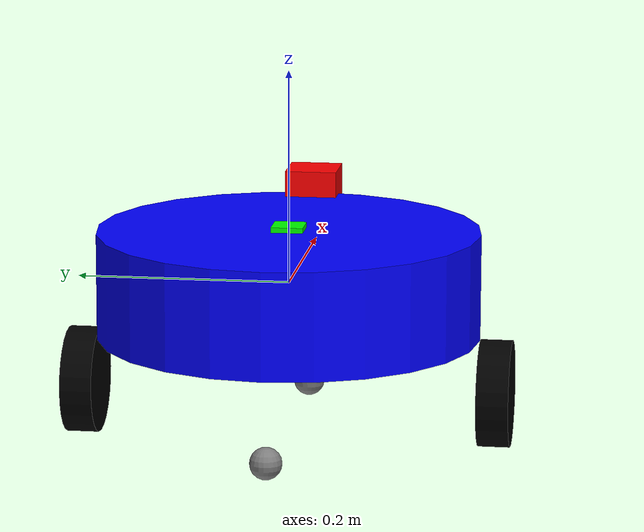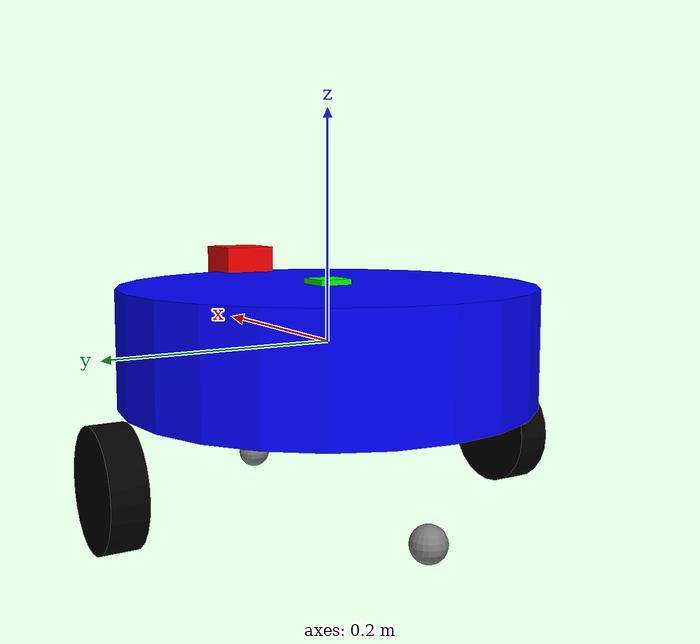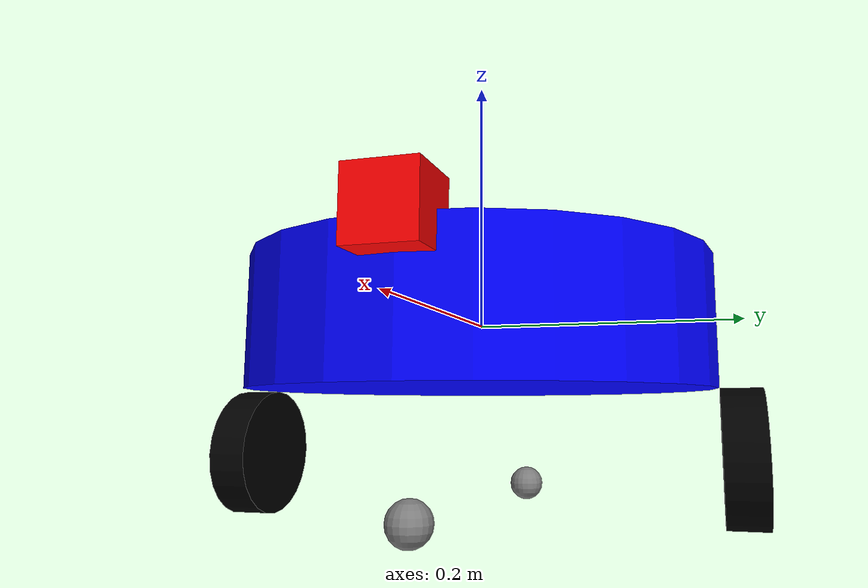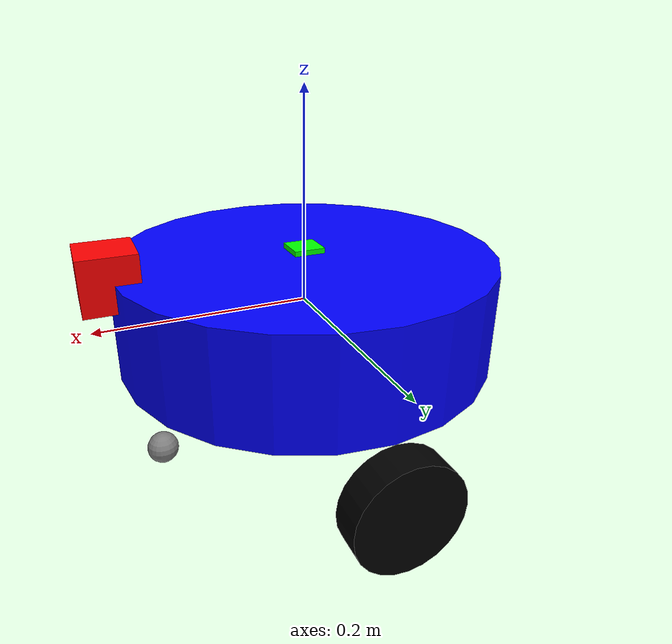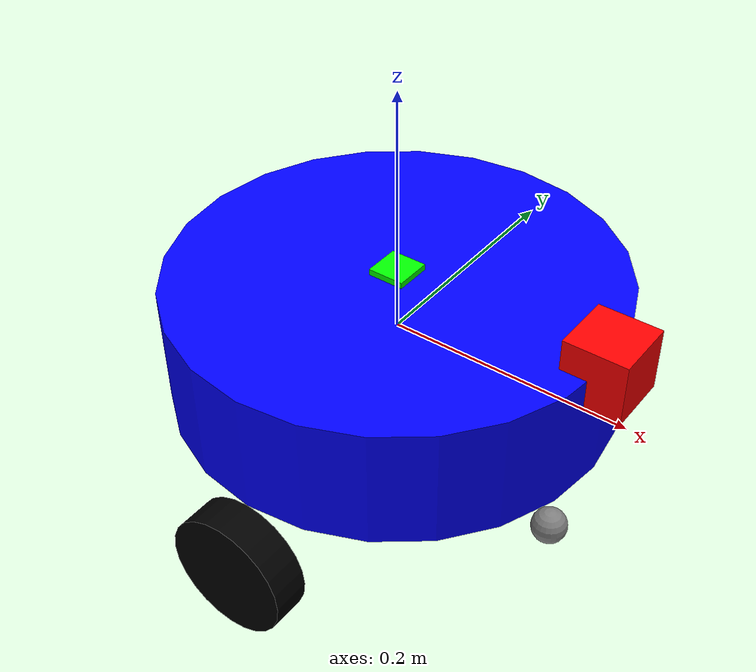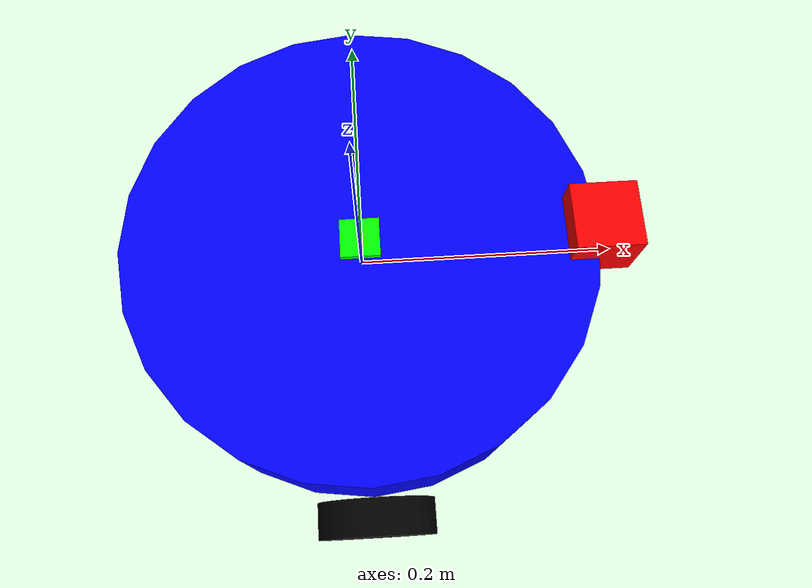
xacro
<?xml version="1.0"?>
<robot xmlns:xacro="http://www.ros.org/wiki/xacro" name="vacuum_robot">

  <xacro:property name="base_radius" value="0.18"/>
  <xacro:property name="base_height" value="0.1"/>
  <xacro:property name="wheel_radius" value="0.05"/>
  <xacro:property name="wheel_width" value="0.03"/>
  <xacro:property name="base_mass" value="5.0"/>
  <xacro:property name="wheel_mass" value="0.5"/>

  <xacro:property name="caster_radius" value="0.015"/>
  <xacro:property name="caster_mass" value="0.1"/>
  <xacro:property name="caster_z_offset" value="${-1 * (base_height/2 + 2*wheel_radius - caster_radius) + 0.002}"/>

  <link name="base_link">
    <visual>
      <origin xyz="0 0 0" rpy="0 0 0"/>
      <geometry>
        <cylinder radius="${base_radius}" length="${base_height}"/>
      </geometry>
      <material name="blue">
        <color rgba="0 0 1 1"/>
      </material>
    </visual>
    <collision>
      <origin xyz="0 0 0" rpy="0 0 0"/>
      <geometry>
        <cylinder radius="${base_radius}" length="${base_height}"/>
      </geometry>
    </collision>
    <inertial>
      <mass value="${base_mass}"/>
      <inertia ixx="0.04" ixy="0" ixz="0" iyy="0.04" iyz="0" izz="0.04"/>
    </inertial>
  </link>

  <link name="left_wheel">
    <visual>
      <origin xyz="0 0 0" rpy="1.5708 0 0"/>
      <geometry>
        <cylinder radius="${wheel_radius}" length="${wheel_width}"/>
      </geometry>
      <material name="black">
        <color rgba="0 0 0 1"/>
      </material>
    </visual>
    <collision>
      <origin xyz="0 0 0" rpy="1.5708 0 0"/>
      <geometry>
        <sphere radius="${wheel_radius}" length="${wheel_width}"/>
      </geometry>
    </collision>
    <inertial>
      <mass value="${wheel_mass}"/>
      <inertia ixx="0.001" ixy="0" ixz="0" iyy="0.001" iyz="0" izz="0.001"/>
    </inertial>
  </link>

  <link name="right_wheel">
    <visual>
      <origin xyz="0 0 0" rpy="1.5708 0 0"/>
      <geometry>
        <cylinder radius="${wheel_radius}" length="${wheel_width}"/>
      </geometry>
      <material name="black">
        <color rgba="0 0 0 1"/>
      </material>
    </visual>
    <collision>
      <origin xyz="0 0 0" rpy="1.5708 0 0"/>
      <geometry>
        <sphere radius="${wheel_radius}" length="${wheel_width}"/>
      </geometry>
    </collision>
    <inertial>
      <mass value="${wheel_mass}"/>
      <inertia ixx="0.001" ixy="0" ixz="0" iyy="0.001" iyz="0" izz="0.001"/>
    </inertial>
  </link>

  <joint name="left_wheel_joint" type="continuous">
    <parent link="base_link"/>
    <child link="left_wheel"/>
    <origin xyz="0 ${base_radius + wheel_width/2} -${base_height/2 + wheel_radius}" rpy="0 0 0"/>
    <axis xyz="0 1 0"/>
  </joint>

  <joint name="right_wheel_joint" type="continuous">
    <parent link="base_link"/>
    <child link="right_wheel"/>
    <origin xyz="0 -${base_radius + wheel_width/2} -${base_height/2 + wheel_radius}" rpy="0 0 0"/>
    <axis xyz="0 1 0"/>
  </joint>

  <link name="laser_link">
    <visual>
      <origin xyz="0 0 0" rpy="0 0 0"/>
      <geometry>
        <box size="0.05 0.05 0.05"/>
      </geometry>
      <material name="red">
        <color rgba="1 0 0 1"/>
      </material>
    </visual>
  </link>

  <joint name="laser_joint" type="fixed">
    <parent link="base_link"/>
    <child link="laser_link"/>
    <origin xyz="${base_radius} 0 ${base_height/2}" rpy="0 0 0"/>
  </joint>

  <link name="imu_link">
    <visual>
      <origin xyz="0 0 0" rpy="0 0 0"/>
      <geometry>
        <box size="0.03 0.03 0.01"/>
      </geometry>
      <material name="green">
        <color rgba="0 1 0 1"/>
      </material>
    </visual>
  </link>

  <joint name="imu_joint" type="fixed">
    <parent link="base_link"/>
    <child link="imu_link"/>
    <origin xyz="0 0 ${base_height/2}" rpy="0 0 0"/>
  </joint>

  <xacro:macro name="caster_xacro" params="prefix x_reflect">
    <link name="${prefix}_caster">
      <visual>
        <geometry>
          <sphere radius="${caster_radius}"/>
        </geometry>
        <material name="grey">
          <color rgba="0.5 0.5 0.5 1"/>
        </material>
      </visual>
      <collision>
        <geometry>
          <sphere radius="${caster_radius}"/>
        </geometry>
      </collision>
      <inertial>
        <mass value="${caster_mass}"/>
        <inertia ixx="0.0001" ixy="0" ixz="0" iyy="0.0001" iyz="0" izz="0.0001"/>
      </inertial>
    </link>

    <joint name="${prefix}_caster_joint" type="fixed">
      <parent link="base_link"/>
      <child link="${prefix}_caster"/>
      <origin xyz="${x_reflect * 0.15} 0 ${caster_z_offset}" rpy="0 0 0"/>
    </joint>
  </xacro:macro>

  <xacro:caster_xacro prefix="front" x_reflect="1.0"/>
  <xacro:caster_xacro prefix="rear" x_reflect="-1.0"/>

</robot>
